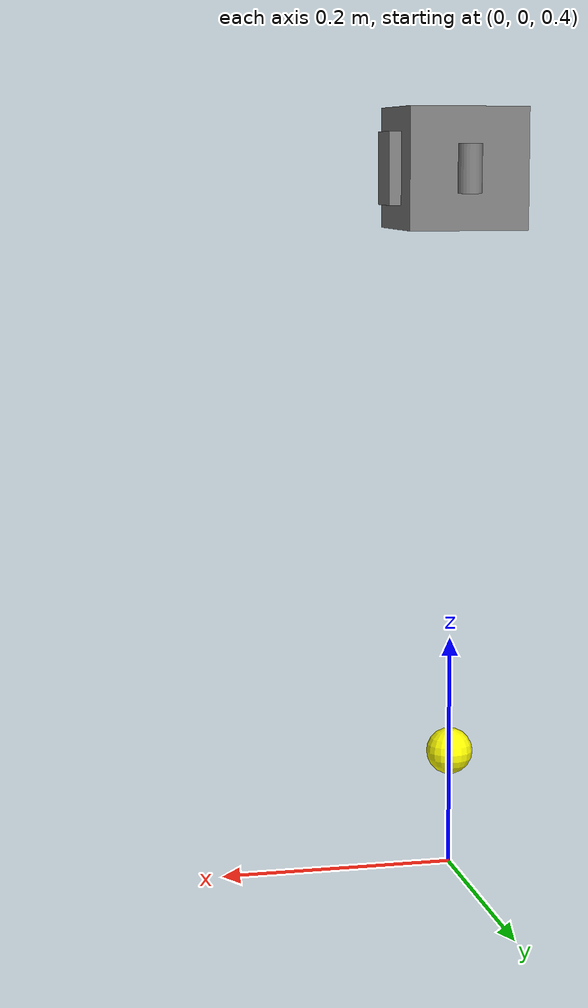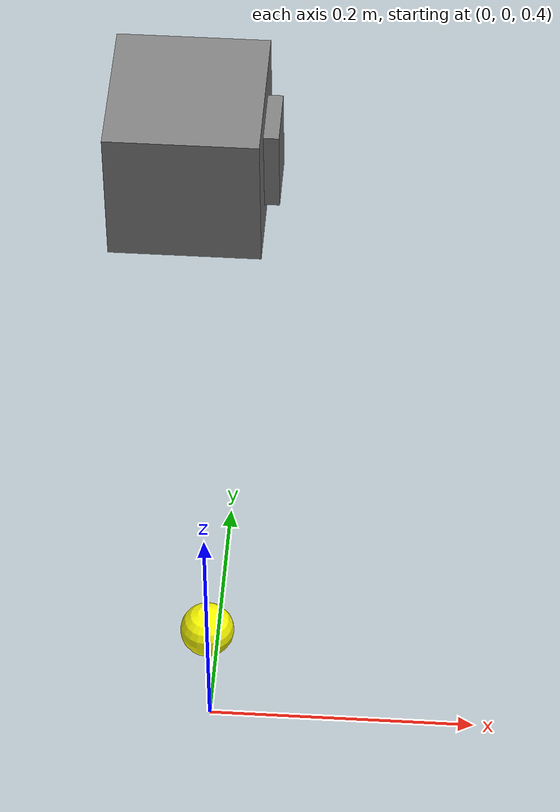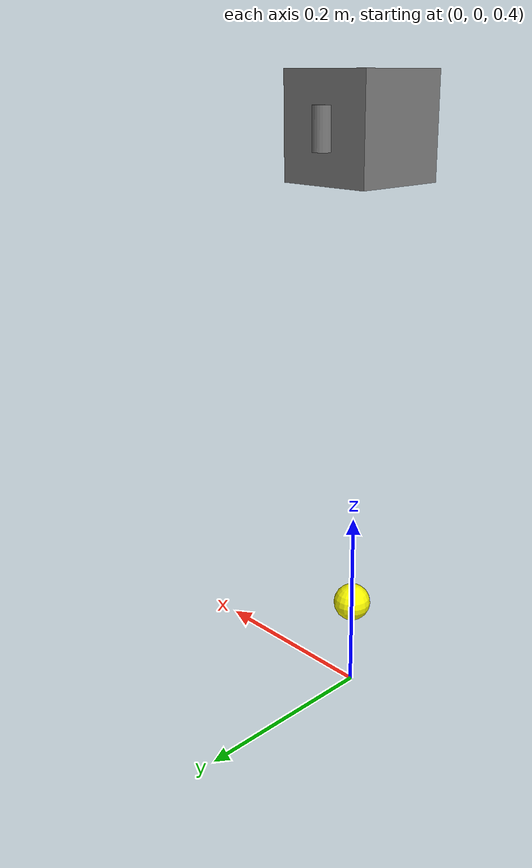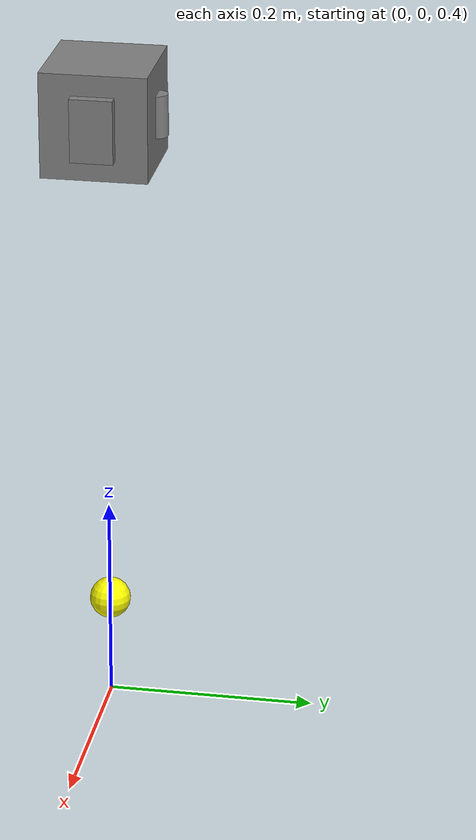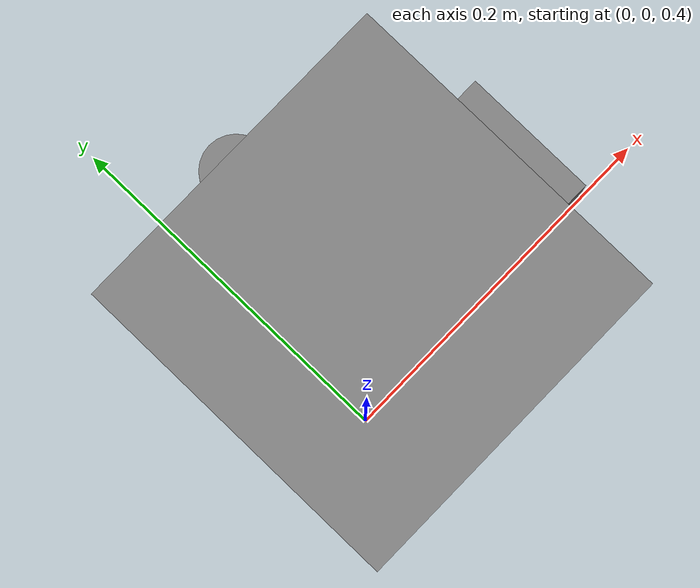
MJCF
<mujoco model="sites_cameras_lights">
  <!-- Covers: sites (several shapes), tracking + fixed cameras, directional and
       positional lights, both world-attached and body-attached. -->
  <compiler angle="degree"/>
  <worldbody>
    <light name="sun" directional="true" pos="0 0 3" dir="0 0 -1" diffuse="0.8 0.8 0.8"/>
    <camera name="fixed_cam" pos="2 2 2" xyaxes="-1 1 0 -1 -1 2"/>
    <site name="world_site" type="sphere" size="0.02" pos="0 0 0.5" rgba="1 1 0 1"/>
    <body name="tracked" pos="0 0 1">
      <freejoint/>
      <geom name="tracked_g" type="box" size="0.05 0.05 0.05"/>
      <site name="body_site_box" type="box" size="0.01 0.02 0.03" pos="0.05 0 0"/>
      <site name="body_site_cyl" type="cylinder" size="0.01 0.02" pos="0 0.05 0"/>
      <camera name="onboard" mode="fixed" pos="0.1 0 0.1" euler="0 90 0"/>
      <light name="lamp" pos="0 0 0.2" dir="0 0 -1" diffuse="0.5 0.5 0.5"/>
    </body>
  </worldbody>
</mujoco>
